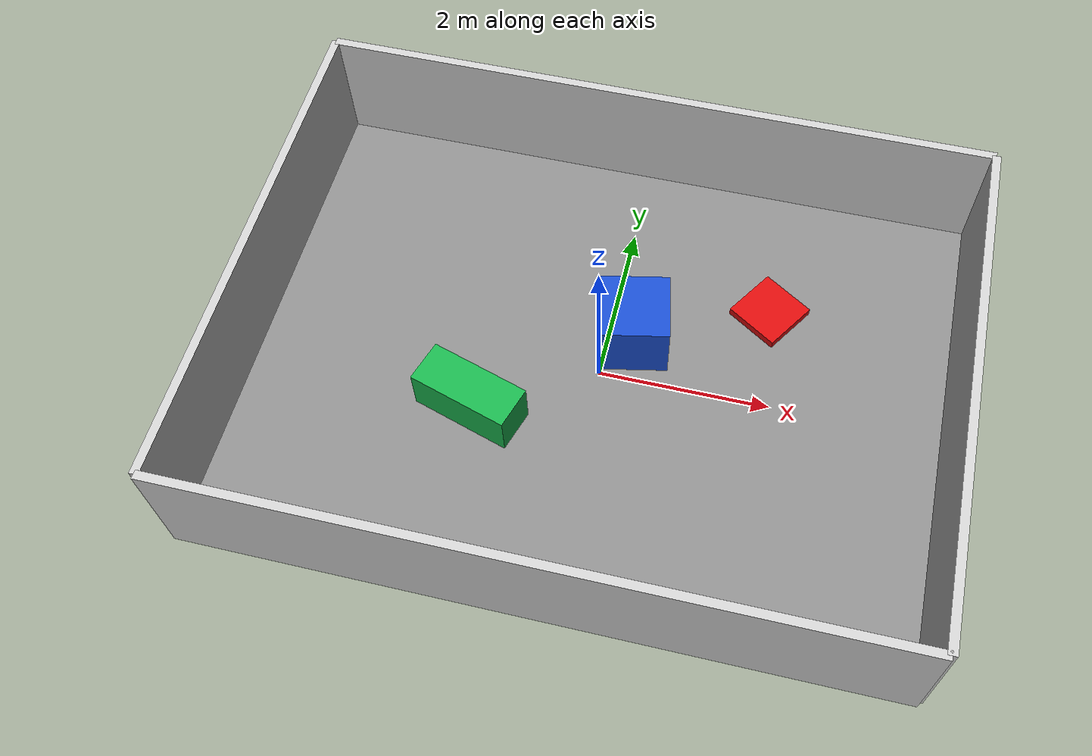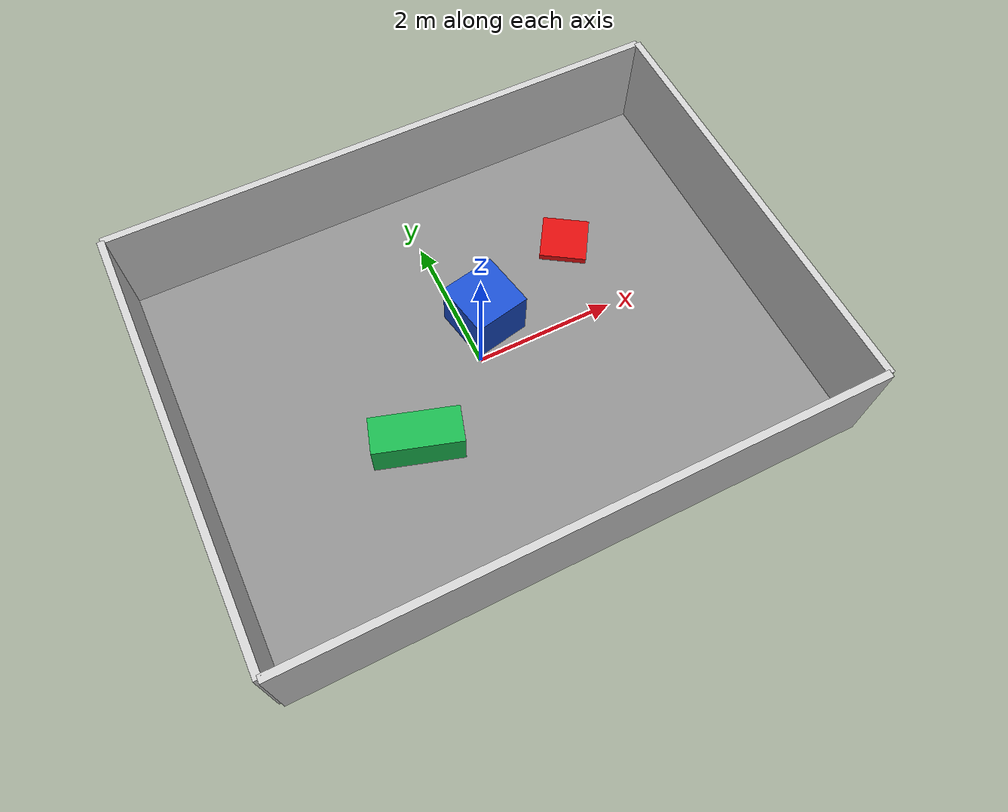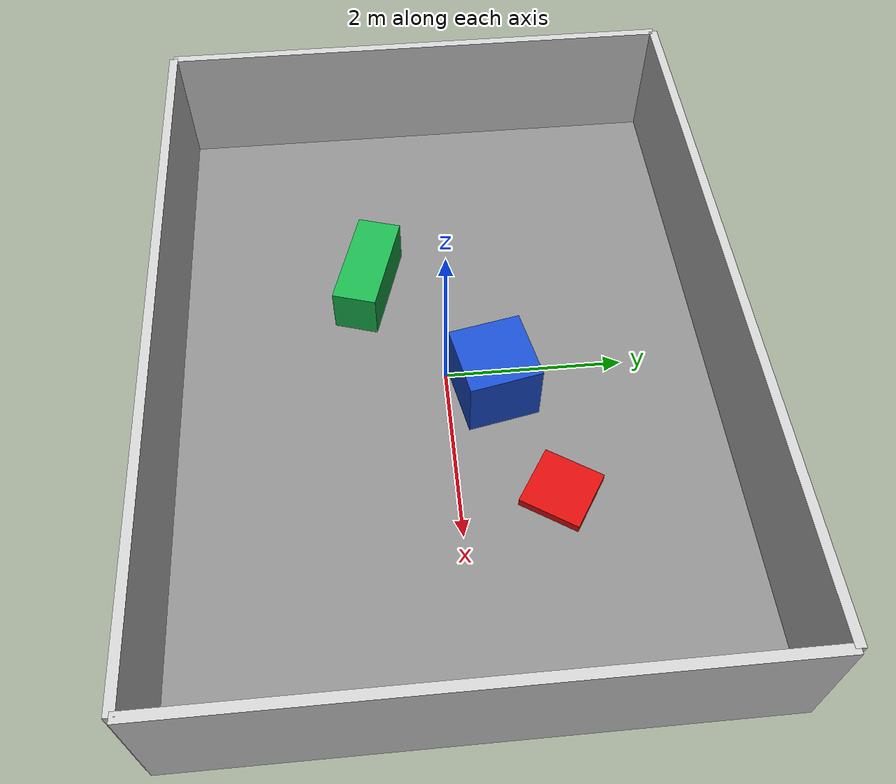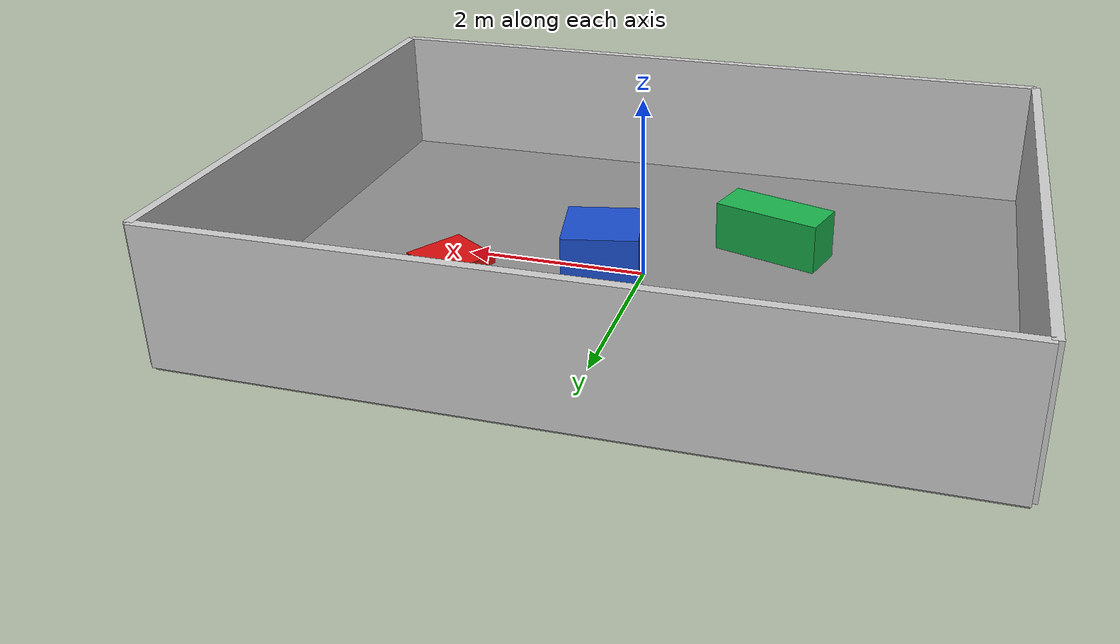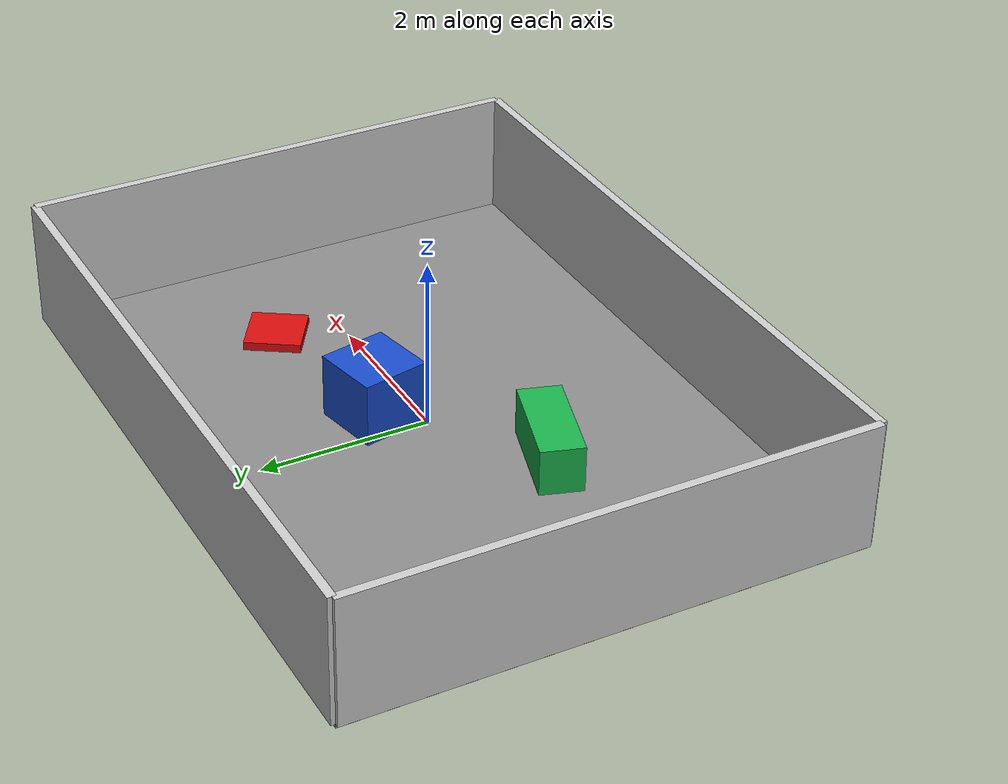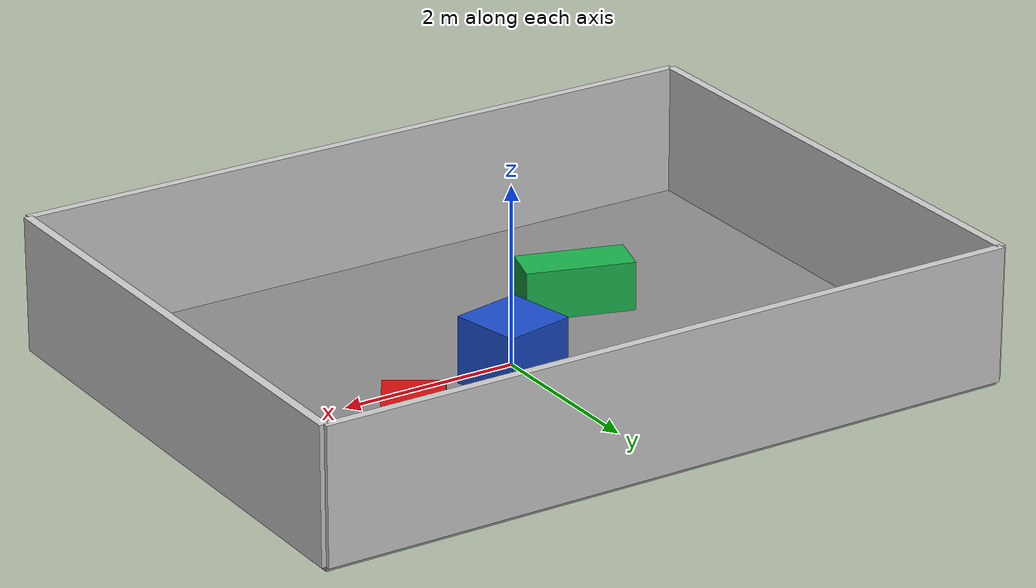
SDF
<?xml version="1.0"?>
<sdf version="1.6">
  <world name="objectnav_room">
    <physics name="default" type="ode"><max_step_size>0.001</max_step_size><real_time_factor>1.0</real_time_factor><real_time_update_rate>1000</real_time_update_rate></physics>
    <scene><ambient>0.4 0.4 0.4 1</ambient><background>0.7 0.8 0.9 1</background><shadows>true</shadows></scene>
    <include><uri>model://sun</uri></include>
    <model name="floor"><static>true</static><link name="link"><collision name="collision"><geometry><box><size>8 6 0.1</size></box></geometry></collision><visual name="visual"><geometry><box><size>8 6 0.1</size></box></geometry><material><diffuse>0.55 0.55 0.55 1</diffuse></material></visual></link></model>
    <model name="walls"><static>true</static><link name="link"><collision name="north"><pose>0 3 0.75 0 0 0</pose><geometry><box><size>8 0.1 1.5</size></box></geometry></collision><collision name="south"><pose>0 -3 0.75 0 0 0</pose><geometry><box><size>8 0.1 1.5</size></box></geometry></collision><collision name="east"><pose>4 0 0.75 0 0 0</pose><geometry><box><size>0.1 6 1.5</size></box></geometry></collision><collision name="west"><pose>-4 0 0.75 0 0 0</pose><geometry><box><size>0.1 6 1.5</size></box></geometry></collision><visual name="north"><pose>0 3 0.75 0 0 0</pose><geometry><box><size>8 0.1 1.5</size></box></geometry><material><diffuse>0.8 0.8 0.8 1</diffuse></material></visual><visual name="south"><pose>0 -3 0.75 0 0 0</pose><geometry><box><size>8 0.1 1.5</size></box></geometry><material><diffuse>0.8 0.8 0.8 1</diffuse></material></visual><visual name="east"><pose>4 0 0.75 0 0 0</pose><geometry><box><size>0.1 6 1.5</size></box></geometry><material><diffuse>0.8 0.8 0.8 1</diffuse></material></visual><visual name="west"><pose>-4 0 0.75 0 0 0</pose><geometry><box><size>0.1 6 1.5</size></box></geometry><material><diffuse>0.8 0.8 0.8 1</diffuse></material></visual></link></model>
    <model name="chair_target"><static>true</static><pose>1.8 1.0 0 0 0 1.0</pose><link name="seat"><collision name="collision"><pose>0 0 0.45 0 0 0</pose><geometry><box><size>0.65 0.65 0.10</size></box></geometry></collision><visual name="visual"><pose>0 0 0.45 0 0 0</pose><geometry><box><size>0.65 0.65 0.10</size></box></geometry><material><diffuse>0.85 0.05 0.05 1</diffuse></material></visual></link></model>
    <model name="obstacle_1"><static>true</static><pose>0.3 0.5 0.4 0 0 0.2</pose><link name="link"><collision name="c"><geometry><box><size>0.8 0.8 0.8</size></box></geometry></collision><visual name="v"><geometry><box><size>0.8 0.8 0.8</size></box></geometry><material><diffuse>0.1 0.3 0.8 1</diffuse></material></visual></link></model>
    <model name="obstacle_2"><static>true</static><pose>-1.3 -0.8 0.3 0 0 -0.3</pose><link name="link"><collision name="c"><geometry><box><size>1.2 0.5 0.6</size></box></geometry></collision><visual name="v"><geometry><box><size>1.2 0.5 0.6</size></box></geometry><material><diffuse>0.1 0.7 0.3 1</diffuse></material></visual></link></model>
  </world>
</sdf>
